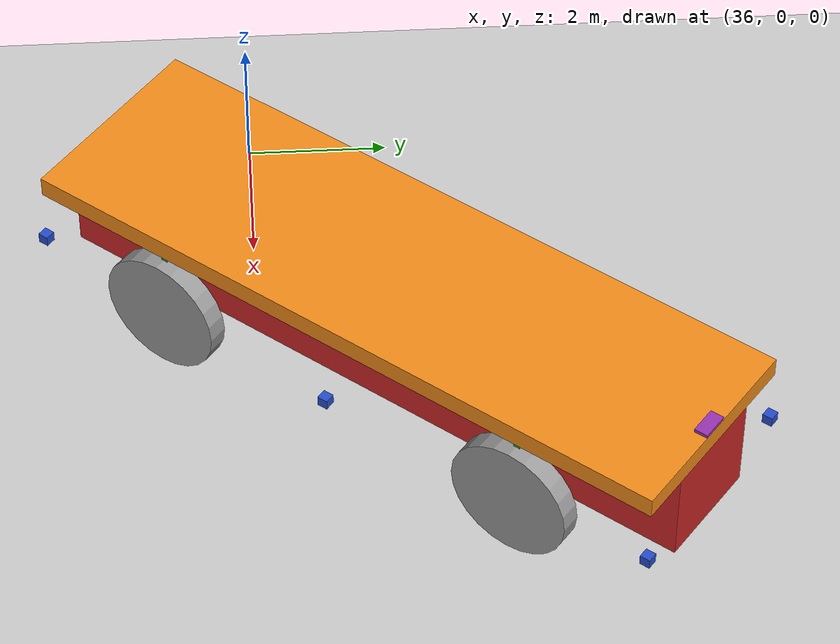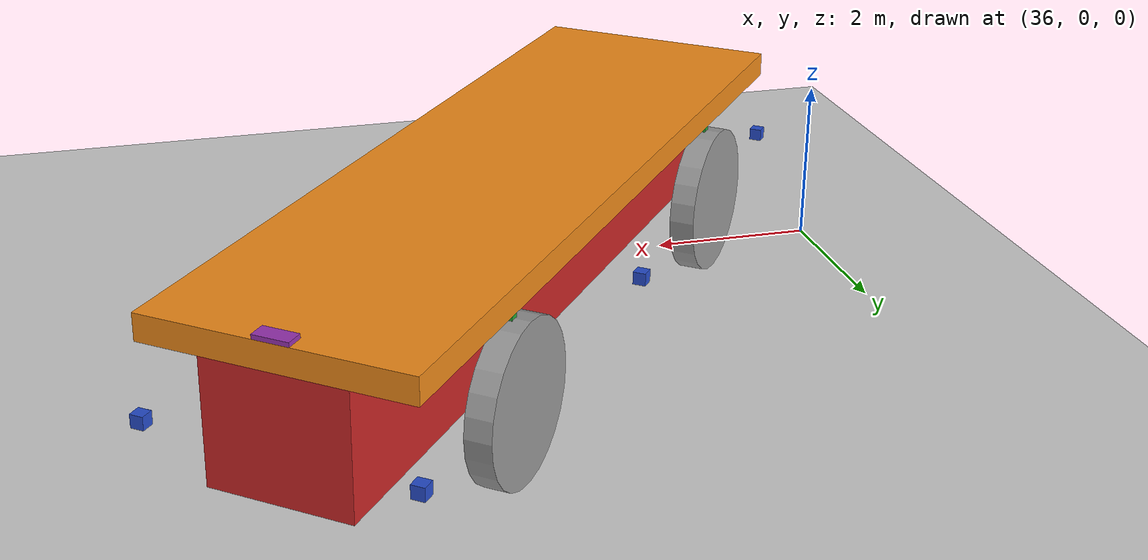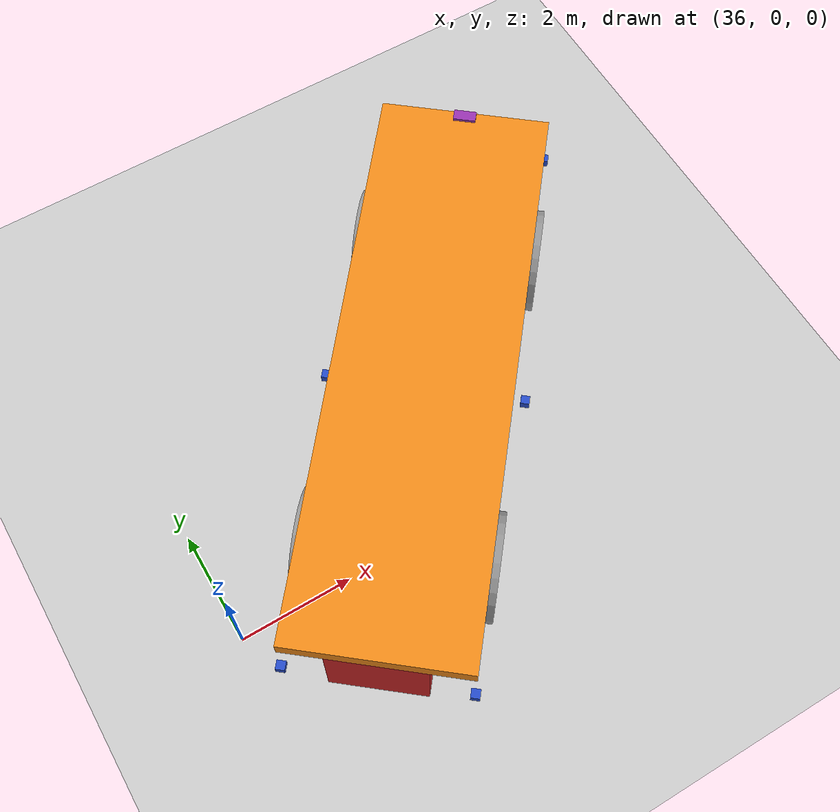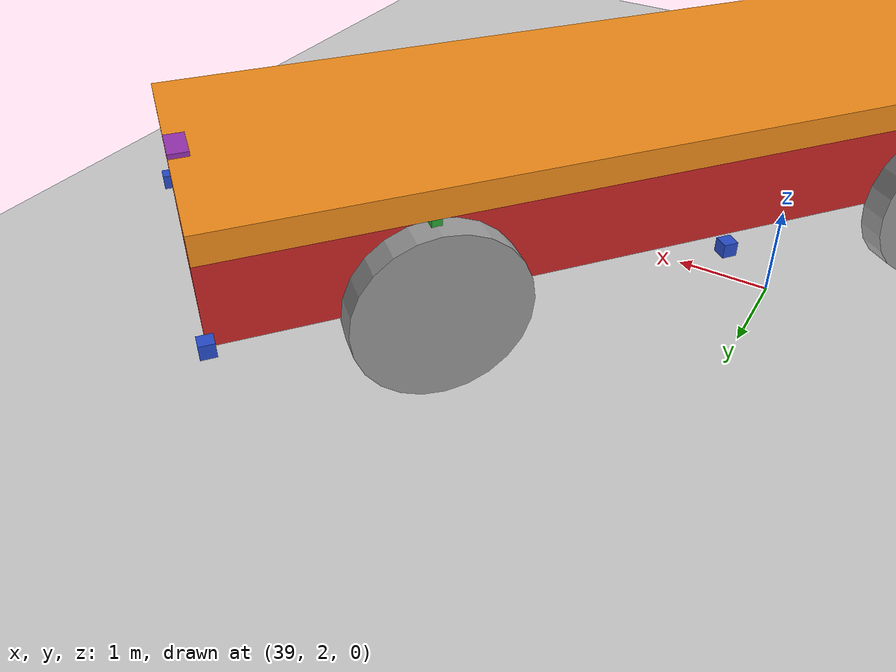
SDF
<sdf version="1.4">
 <world name="default">
  <model name="ground_plane">
   <static>1</static>
   <link name="link">
    <collision name="collision">
     <geometry><plane><normal>0 0 1</normal><size>100 100</size></plane></geometry>
     <surface><friction><ode><mu>100</mu><mu2>50</mu2></ode></friction></surface>
    </collision>
    <visual name="visual">
     <cast_shadows>0</cast_shadows>
     <geometry><plane><normal>0 0 1</normal><size>100 100</size></plane></geometry>
     <material>
      <script><uri>file://media/materials/scripts/gazebo.material</uri><name>Gazebo/Grey</name></script>
     </material>
    </visual>
    <velocity_decay><linear>0</linear><angular>0</angular></velocity_decay>
   </link>
  </model>
  <light name="sun" type="directional">
   <pose>0 0 10 0 -0 0</pose>
   <diffuse>0.8 0.8 0.8 1</diffuse>
   <specular>0.2 0.2 0.2 1</specular>
   <attenuation>
    <range>1000</range>
    <constant>0.9</constant>
    <linear>0.01</linear>
    <quadratic>0.001</quadratic>
   </attenuation>
   <direction>-0.5 0.1 -0.9</direction>
  </light>
  <physics type="ode">
   <max_step_size>0.001</max_step_size>
   <real_time_factor>1</real_time_factor>
   <real_time_update_rate>1000</real_time_update_rate>
   <gravity>0 0 -9.8</gravity>
  </physics>
  <scene><ambient>0.4 0.4 0.4 1</ambient><background>0.7 0.7 0.7 1</background><shadows>1</shadows></scene>
  <spherical_coordinates>
   <surface_model>EARTH_WGS84</surface_model>
   <latitude_deg>0</latitude_deg>
   <longitude_deg>0</longitude_deg>
   <elevation>0</elevation>
   <heading_deg>0</heading_deg>
  </spherical_coordinates>
  <model name="agv">
   <link name="agv_footprint">
    <inertial>
     <pose>3.25363e-05 1.47439e-19 1.48169 0 -0 0</pose>
     <mass>1506.01</mass>
     <inertia>
      <ixx>1009.07</ixx>
      <ixy>7.22451e-21</ixy>
      <ixz>-0.0364221</ixz>
      <iyy>12958.5</iyy>
      <iyz>-1.2619e-16</iyz>
      <izz>13151</izz>
     </inertia>
    </inertial>
    <collision name="agv_footprint_collision_agv_base_link">
     <pose>0 0 1.2 0 -0 0</pose>
     <geometry><box><size>10 1.6 1.4</size></box></geometry>
    </collision>
    <collision name="agv_footprint_collision_agv_platform">
     <pose>0 0 2.05 0 -0 0</pose>
     <geometry><box><size>10 3 0.3</size></box></geometry>
    </collision>
    <visual name="agv_footprint_visual"><geometry><box><size>0.1 0.1 0.1</size></box></geometry></visual>
    <visual name="agv_footprint_visual_agv_base_link">
     <pose>0 0 1.2 0 -0 0</pose>
     <geometry><box><size>10 1.6 1.4</size></box></geometry>
     <material><script><name>Gazebo/Red</name><uri>__default__</uri></script></material>
    </visual>
    <visual name="agv_footprint_visual_agv_fwd_mark">
     <pose>4.9 0 2.225 0 -0 0</pose>
     <geometry><box><size>0.2 0.4 0.05</size></box></geometry>
     <material><script><name>Gazebo/Purple</name><uri>__default__</uri></script></material>
    </visual>
    <visual name="agv_footprint_visual_agv_lidar0">
     <pose>5 1.5 1.07 0 -0 0</pose>
     <geometry><box><size>0.15 0.15 0.15</size></box></geometry>
     <material><script><name>Gazebo/Blue</name><uri>__default__</uri></script></material>
    </visual>
    <visual name="agv_footprint_visual_agv_lidar1">
     <pose>5 -1.5 1.07 0 -0 0</pose>
     <geometry><box><size>0.15 0.15 0.15</size></box></geometry>
     <material><script><name>Gazebo/Blue</name><uri>__default__</uri></script></material>
    </visual>
    <visual name="agv_footprint_visual_agv_lidar2">
     <pose>0 1.7 1.07 0 -0 1.5708</pose>
     <geometry><box><size>0.15 0.15 0.15</size></box></geometry>
     <material><script><name>Gazebo/Blue</name><uri>__default__</uri></script></material>
    </visual>
    <visual name="agv_footprint_visual_agv_lidar3">
     <pose>0 -1.7 1.07 0 0 -1.5708</pose>
     <geometry><box><size>0.15 0.15 0.15</size></box></geometry>
     <material><script><name>Gazebo/Blue</name><uri>__default__</uri></script></material>
    </visual>
    <visual name="agv_footprint_visual_agv_lidar4">
     <pose>-5 1.5 1.07 0 -0 3.14159</pose>
     <geometry><box><size>0.15 0.15 0.15</size></box></geometry>
     <material><script><name>Gazebo/Blue</name><uri>__default__</uri></script></material>
    </visual>
    <visual name="agv_footprint_visual_agv_lidar5">
     <pose>-5 -1.5 1.07 0 -0 3.14159</pose>
     <geometry><box><size>0.15 0.15 0.15</size></box></geometry>
     <material><script><name>Gazebo/Blue</name><uri>__default__</uri></script></material>
    </visual>
    <visual name="agv_footprint_visual_agv_platform">
     <pose>0 0 2.05 0 -0 0</pose>
     <geometry><box><size>10 3 0.3</size></box></geometry>
     <material><script><name>Gazebo/Orange</name><uri>__default__</uri></script></material>
    </visual>
    <velocity_decay><linear>0</linear><angular>0</angular></velocity_decay>
    <velocity_decay><linear>0</linear><angular>0</angular></velocity_decay>
    <velocity_decay><linear>0</linear><angular>0</angular></velocity_decay>
    <velocity_decay><linear>0</linear><angular>0</angular></velocity_decay>
    <velocity_decay><linear>0</linear><angular>0</angular></velocity_decay>
    <sensor name="lidar0" type="ray">
     <visualize>1</visualize>
     <update_rate>10</update_rate>
     <ray>
      <scan>
       <horizontal>
        <samples>360</samples>
        <resolution>1</resolution>
        <min_angle>-1.5</min_angle>
        <max_angle>1.5</max_angle>
       </horizontal>
      </scan>
      <range><min>0.1</min><max>50</max><resolution>0.01</resolution></range>
      <noise><type>gaussian</type><mean>0</mean><stddev>0.01</stddev></noise>
     </ray>
     <plugin name="agv_lidar0" filename="libgazebo_ros_laser.so">
      <topicName>agv/fl_lidar</topicName>
      <frameName>agv_lidar0</frameName>
      <robotNamespace>/</robotNamespace>
     </plugin>
     <pose>5 1.5 1.07 0 -0 0</pose>
    </sensor>
    <velocity_decay><linear>0</linear><angular>0</angular></velocity_decay>
    <velocity_decay><linear>0</linear><angular>0</angular></velocity_decay>
    <sensor name="lidar1" type="ray">
     <visualize>1</visualize>
     <update_rate>10</update_rate>
     <ray>
      <scan>
       <horizontal>
        <samples>360</samples>
        <resolution>1</resolution>
        <min_angle>-1.5</min_angle>
        <max_angle>1.5</max_angle>
       </horizontal>
      </scan>
      <range><min>0.1</min><max>50</max><resolution>0.01</resolution></range>
      <noise><type>gaussian</type><mean>0</mean><stddev>0.01</stddev></noise>
     </ray>
     <plugin name="agv_lidar1" filename="libgazebo_ros_laser.so">
      <topicName>agv/fr_lidar</topicName>
      <frameName>agv_lidar1</frameName>
      <robotNamespace>/</robotNamespace>
     </plugin>
     <pose>5 -1.5 1.07 0 -0 0</pose>
    </sensor>
    <velocity_decay><linear>0</linear><angular>0</angular></velocity_decay>
    <velocity_decay><linear>0</linear><angular>0</angular></velocity_decay>
    <sensor name="lidar2" type="ray">
     <visualize>1</visualize>
     <update_rate>10</update_rate>
     <ray>
      <scan>
       <horizontal>
        <samples>360</samples>
        <resolution>1</resolution>
        <min_angle>-1.5</min_angle>
        <max_angle>1.5</max_angle>
       </horizontal>
      </scan>
      <range><min>0.1</min><max>50</max><resolution>0.01</resolution></range>
      <noise><type>gaussian</type><mean>0</mean><stddev>0.01</stddev></noise>
     </ray>
     <plugin name="agv_lidar2" filename="libgazebo_ros_laser.so">
      <topicName>agv/sl_lidar</topicName>
      <frameName>agv_lidar2</frameName>
      <robotNamespace>/</robotNamespace>
     </plugin>
     <pose>0 1.7 1.07 0 -0 1.5708</pose>
    </sensor>
    <velocity_decay><linear>0</linear><angular>0</angular></velocity_decay>
    <self_collide>1</self_collide>
    <velocity_decay><linear>0</linear><angular>0</angular></velocity_decay>
    <sensor name="lidar3" type="ray">
     <visualize>1</visualize>
     <update_rate>10</update_rate>
     <ray>
      <scan>
       <horizontal>
        <samples>360</samples>
        <resolution>1</resolution>
        <min_angle>-1.5</min_angle>
        <max_angle>1.5</max_angle>
       </horizontal>
      </scan>
      <range><min>0.1</min><max>50</max><resolution>0.01</resolution></range>
      <noise><type>gaussian</type><mean>0</mean><stddev>0.01</stddev></noise>
     </ray>
     <plugin name="agv_lidar3" filename="libgazebo_ros_laser.so">
      <topicName>agv/sr_lidar</topicName>
      <frameName>agv_lidar3</frameName>
      <robotNamespace>/</robotNamespace>
     </plugin>
     <pose>0 -1.7 1.07 0 0 -1.5708</pose>
    </sensor>
    <velocity_decay><linear>0</linear><angular>0</angular></velocity_decay>
    <self_collide>1</self_collide>
    <velocity_decay><linear>0</linear><angular>0</angular></velocity_decay>
    <sensor name="lidar4" type="ray">
     <visualize>1</visualize>
     <update_rate>10</update_rate>
     <ray>
      <scan>
       <horizontal>
        <samples>360</samples>
        <resolution>1</resolution>
        <min_angle>-1.5</min_angle>
        <max_angle>1.5</max_angle>
       </horizontal>
      </scan>
      <range><min>0.1</min><max>50</max><resolution>0.01</resolution></range>
      <noise><type>gaussian</type><mean>0</mean><stddev>0.01</stddev></noise>
     </ray>
     <plugin name="agv_lidar4" filename="libgazebo_ros_laser.so">
      <topicName>agv/bl_lidar</topicName>
      <frameName>agv_lidar4</frameName>
      <robotNamespace>/</robotNamespace>
     </plugin>
     <pose>-5 1.5 1.07 0 -0 3.14159</pose>
    </sensor>
    <velocity_decay><linear>0</linear><angular>0</angular></velocity_decay>
    <self_collide>1</self_collide>
    <velocity_decay><linear>0</linear><angular>0</angular></velocity_decay>
    <sensor name="lidar5" type="ray">
     <visualize>1</visualize>
     <update_rate>10</update_rate>
     <ray>
      <scan>
       <horizontal>
        <samples>360</samples>
        <resolution>1</resolution>
        <min_angle>-1.5</min_angle>
        <max_angle>1.5</max_angle>
       </horizontal>
      </scan>
      <range><min>0.1</min><max>50</max><resolution>0.01</resolution></range>
      <noise><type>gaussian</type><mean>0</mean><stddev>0.01</stddev></noise>
     </ray>
     <plugin name="agv_lidar5" filename="libgazebo_ros_laser.so">
      <topicName>agv/br_lidar</topicName>
      <frameName>agv_lidar5</frameName>
      <robotNamespace>/</robotNamespace>
     </plugin>
     <pose>-5 -1.5 1.07 0 -0 3.14159</pose>
    </sensor>
   </link>
   <link name="agv_bl_hinge">
    <pose>-2.9 1.4 1.4 0 -0 0</pose>
    <inertial>
     <mass>10</mass>
     <inertia><ixx>0.8383</ixx><ixy>0</ixy><ixz>0</ixz><iyy>0.8383</iyy><iyz>0</iyz><izz>0.0166</izz></inertia>
    </inertial>
    <visual name="agv_bl_hinge_visual">
     <geometry><box><size>0.1 0.1 1</size></box></geometry>
     <material><script><name>Gazebo/Green</name><uri>__default__</uri></script></material>
    </visual>
    <velocity_decay><linear>0</linear><angular>0</angular></velocity_decay>
   </link>
   <joint name="agv_platform_2_bl_hinge" type="revolute">
    <child>agv_bl_hinge</child>
    <parent>agv_footprint</parent>
    <axis>
     <xyz>0 0 1</xyz>
     <limit><lower>-0.942478</lower><upper>0.942478</upper><effort>100000</effort><velocity>1</velocity></limit>
     <dynamics><damping>100</damping></dynamics>
    </axis>
   </joint>
   <link name="agv_bl_wheel">
    <pose>-2.9 1.475 0.9 -1.5708 0 0</pose>
    <inertial>
     <mass>100</mass>
     <inertia><ixx>20.1898</ixx><ixy>0</ixy><ixz>0</ixz><iyy>20.1898</iyy><iyz>0</iyz><izz>40.5</izz></inertia>
    </inertial>
    <collision name="agv_bl_wheel_collision">
     <geometry><cylinder><length>0.05</length><radius>0.9</radius></cylinder></geometry>
     <surface><friction><ode><mu>1</mu><mu2>1</mu2></ode></friction></surface>
    </collision>
    <visual name="agv_bl_wheel_visual">
     <geometry><cylinder><length>0.3</length><radius>0.9</radius></cylinder></geometry>
     <material><script><name>Gazebo/Grey</name><uri>__default__</uri></script></material>
    </visual>
    <velocity_decay><linear>0</linear><angular>0</angular></velocity_decay>
   </link>
   <joint name="agv_bl_hinge_2_wheel" type="revolute">
    <child>agv_bl_wheel</child>
    <parent>agv_bl_hinge</parent>
    <axis>
     <xyz>0 1 0</xyz>
     <limit><lower>-1e+16</lower><upper>1e+16</upper></limit>
     <dynamics><damping>0.2</damping></dynamics>
    </axis>
   </joint>
   <link name="agv_br_hinge">
    <pose>-2.9 -1.4 1.4 0 -0 0</pose>
    <inertial>
     <mass>10</mass>
     <inertia><ixx>0.8383</ixx><ixy>0</ixy><ixz>0</ixz><iyy>0.8383</iyy><iyz>0</iyz><izz>0.0166</izz></inertia>
    </inertial>
    <visual name="agv_br_hinge_visual">
     <geometry><box><size>0.1 0.1 1</size></box></geometry>
     <material><script><name>Gazebo/Green</name><uri>__default__</uri></script></material>
    </visual>
    <velocity_decay><linear>0</linear><angular>0</angular></velocity_decay>
   </link>
   <joint name="agv_platform_2_br_hinge" type="revolute">
    <child>agv_br_hinge</child>
    <parent>agv_footprint</parent>
    <axis>
     <xyz>0 0 1</xyz>
     <limit><lower>-0.942478</lower><upper>0.942478</upper><effort>100000</effort><velocity>1</velocity></limit>
     <dynamics><damping>100</damping></dynamics>
    </axis>
   </joint>
   <link name="agv_br_wheel">
    <pose>-2.9 -1.475 0.9 -1.5708 0 0</pose>
    <inertial>
     <mass>100</mass>
     <inertia><ixx>20.1898</ixx><ixy>0</ixy><ixz>0</ixz><iyy>20.1898</iyy><iyz>0</iyz><izz>40.5</izz></inertia>
    </inertial>
    <collision name="agv_br_wheel_collision">
     <geometry><cylinder><length>0.05</length><radius>0.9</radius></cylinder></geometry>
     <surface><friction><ode><mu>1</mu><mu2>1</mu2></ode></friction></surface>
    </collision>
    <visual name="agv_br_wheel_visual">
     <geometry><cylinder><length>0.3</length><radius>0.9</radius></cylinder></geometry>
     <material><script><name>Gazebo/Grey</name><uri>__default__</uri></script></material>
    </visual>
    <velocity_decay><linear>0</linear><angular>0</angular></velocity_decay>
   </link>
   <joint name="agv_br_hinge_2_wheel" type="revolute">
    <child>agv_br_wheel</child>
    <parent>agv_br_hinge</parent>
    <axis>
     <xyz>0 1 0</xyz>
     <limit><lower>-1e+16</lower><upper>1e+16</upper></limit>
     <dynamics><damping>0.2</damping></dynamics>
    </axis>
   </joint>
   <link name="agv_fl_hinge">
    <pose>2.9 1.4 1.4 0 -0 0</pose>
    <inertial>
     <mass>10</mass>
     <inertia><ixx>0.8383</ixx><ixy>0</ixy><ixz>0</ixz><iyy>0.8383</iyy><iyz>0</iyz><izz>0.0166</izz></inertia>
    </inertial>
    <visual name="agv_fl_hinge_visual">
     <geometry><box><size>0.1 0.1 1</size></box></geometry>
     <material><script><name>Gazebo/Green</name><uri>__default__</uri></script></material>
    </visual>
    <velocity_decay><linear>0</linear><angular>0</angular></velocity_decay>
   </link>
   <joint name="agv_platform_2_fl_hinge" type="revolute">
    <child>agv_fl_hinge</child>
    <parent>agv_footprint</parent>
    <axis>
     <xyz>0 0 1</xyz>
     <limit><lower>-0.942478</lower><upper>0.942478</upper><effort>100000</effort><velocity>1</velocity></limit>
     <dynamics><damping>100</damping></dynamics>
    </axis>
   </joint>
   <link name="agv_fl_wheel">
    <pose>2.9 1.475 0.9 -1.5708 0 0</pose>
    <inertial>
     <mass>100</mass>
     <inertia><ixx>20.1898</ixx><ixy>0</ixy><ixz>0</ixz><iyy>20.1898</iyy><iyz>0</iyz><izz>40.5</izz></inertia>
    </inertial>
    <collision name="agv_fl_wheel_collision">
     <geometry><cylinder><length>0.05</length><radius>0.9</radius></cylinder></geometry>
     <surface><friction><ode><mu>1</mu><mu2>1</mu2></ode></friction></surface>
    </collision>
    <visual name="agv_fl_wheel_visual">
     <geometry><cylinder><length>0.3</length><radius>0.9</radius></cylinder></geometry>
     <material><script><name>Gazebo/Grey</name><uri>__default__</uri></script></material>
    </visual>
    <velocity_decay><linear>0</linear><angular>0</angular></velocity_decay>
   </link>
   <joint name="agv_fl_hinge_2_wheel" type="revolute">
    <child>agv_fl_wheel</child>
    <parent>agv_fl_hinge</parent>
    <axis>
     <xyz>0 1 0</xyz>
     <limit><lower>-1e+16</lower><upper>1e+16</upper></limit>
     <dynamics><damping>0.2</damping></dynamics>
    </axis>
   </joint>
   <link name="agv_fr_hinge">
    <pose>2.9 -1.4 1.4 0 -0 0</pose>
    <inertial>
     <mass>10</mass>
     <inertia><ixx>0.8383</ixx><ixy>0</ixy><ixz>0</ixz><iyy>0.8383</iyy><iyz>0</iyz><izz>0.0166</izz></inertia>
    </inertial>
    <visual name="agv_fr_hinge_visual">
     <geometry><box><size>0.1 0.1 1</size></box></geometry>
     <material><script><name>Gazebo/Green</name><uri>__default__</uri></script></material>
    </visual>
    <velocity_decay><linear>0</linear><angular>0</angular></velocity_decay>
   </link>
   <joint name="agv_platform_2_fr_hinge" type="revolute">
    <child>agv_fr_hinge</child>
    <parent>agv_footprint</parent>
    <axis>
     <xyz>0 0 1</xyz>
     <limit><lower>-0.942478</lower><upper>0.942478</upper><effort>100000</effort><velocity>1</velocity></limit>
     <dynamics><damping>100</damping></dynamics>
    </axis>
   </joint>
   <link name="agv_fr_wheel">
    <pose>2.9 -1.475 0.9 -1.5708 0 0</pose>
    <inertial>
     <mass>100</mass>
     <inertia><ixx>20.1898</ixx><ixy>0</ixy><ixz>0</ixz><iyy>20.1898</iyy><iyz>0</iyz><izz>40.5</izz></inertia>
    </inertial>
    <collision name="agv_fr_wheel_collision">
     <geometry><cylinder><length>0.05</length><radius>0.9</radius></cylinder></geometry>
     <surface><friction><ode><mu>1</mu><mu2>1</mu2></ode></friction></surface>
    </collision>
    <visual name="agv_fr_wheel_visual">
     <geometry><cylinder><length>0.3</length><radius>0.9</radius></cylinder></geometry>
     <material><script><name>Gazebo/Grey</name><uri>__default__</uri></script></material>
    </visual>
    <velocity_decay><linear>0</linear><angular>0</angular></velocity_decay>
   </link>
   <joint name="agv_fr_hinge_2_wheel" type="revolute">
    <child>agv_fr_wheel</child>
    <parent>agv_fr_hinge</parent>
    <axis>
     <xyz>0 1 0</xyz>
     <limit><lower>-1e+16</lower><upper>1e+16</upper></limit>
     <dynamics><damping>0.2</damping></dynamics>
    </axis>
   </joint>
   <plugin name="agv_ground_truth" filename="libgazebo_ros_p3d.so">
    <topicName>agv/ground_truth</topicName>
    <frameName>world</frameName>
    <bodyName>agv_footprint</bodyName>
    <gaussianNoise>0.0</gaussianNoise>
    <alwaysOn>true</alwaysOn>
    <updateRate>20.0</updateRate>
    <robotNamespace>/</robotNamespace>
   </plugin>
   <static>0</static>
   <plugin name="gazebo_ros_control" filename="libgazebo_ros_control.so">
    <robotNamespace>/agv</robotNamespace>
    <controlPeriod>0.001</controlPeriod>
   </plugin>
   <pose>40.6131 1.94639 -2.8e-05 0 -2e-06 0.890301</pose>
  </model>
 </world>
</sdf>
